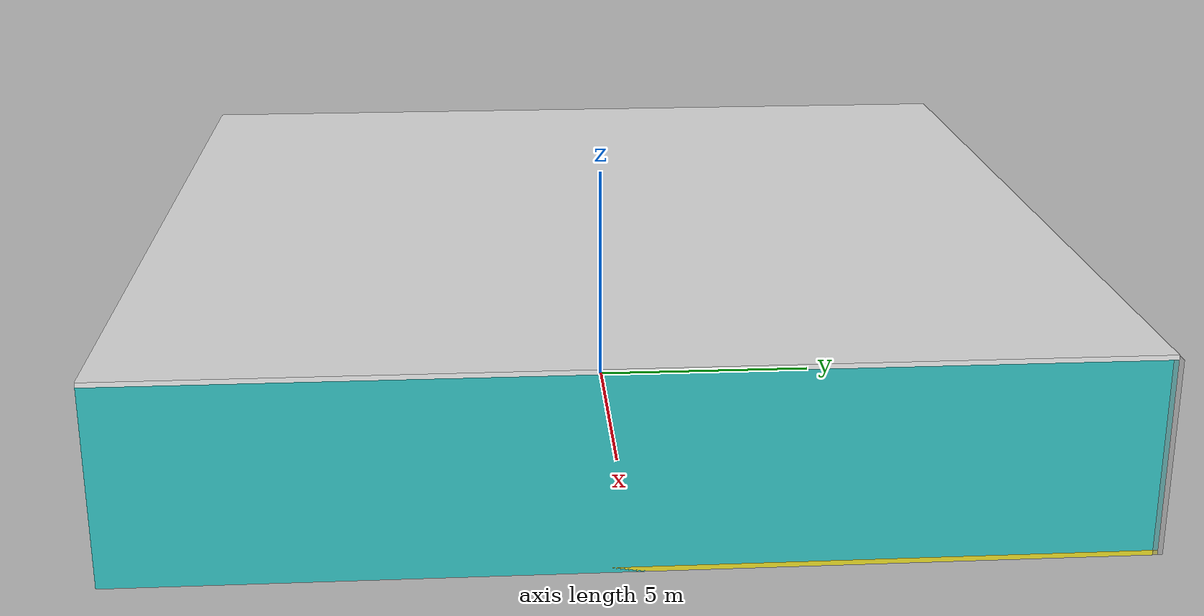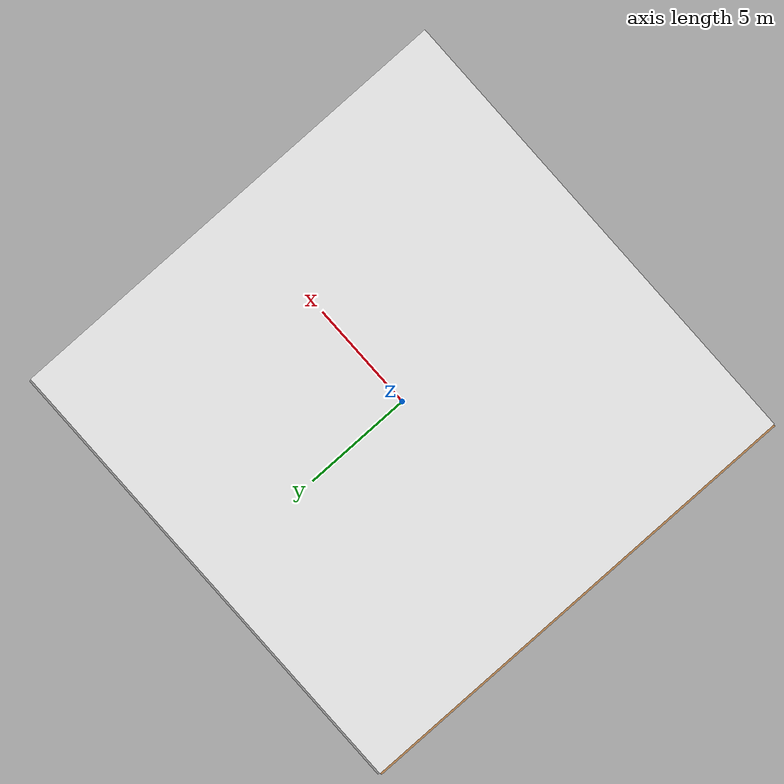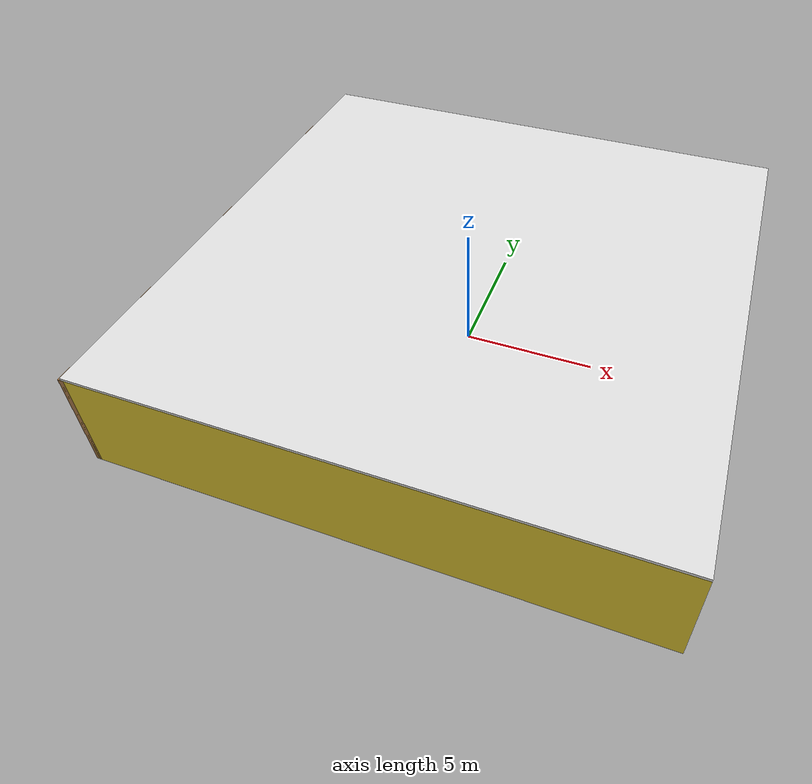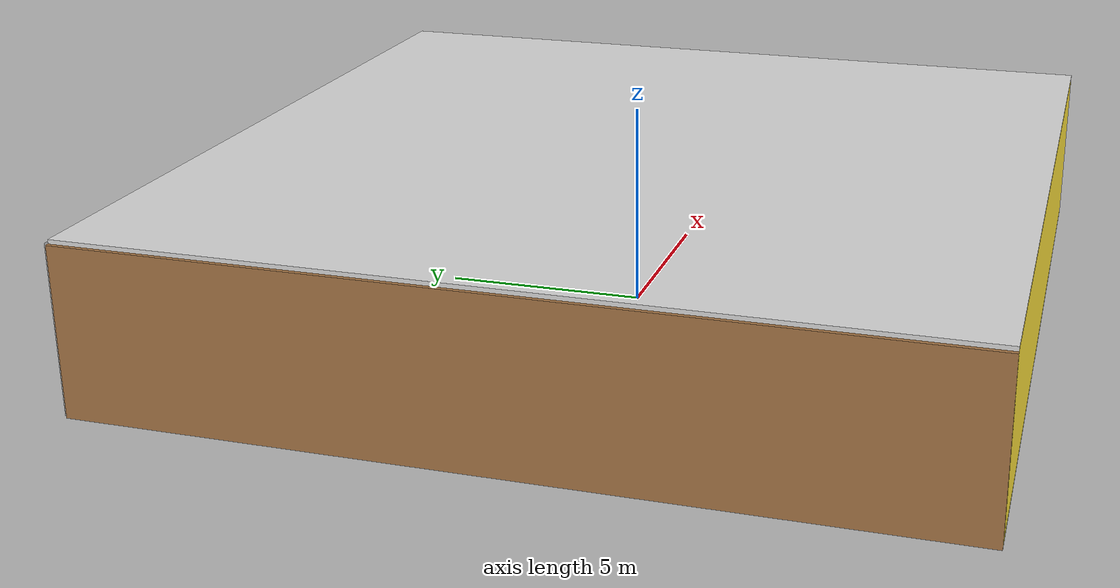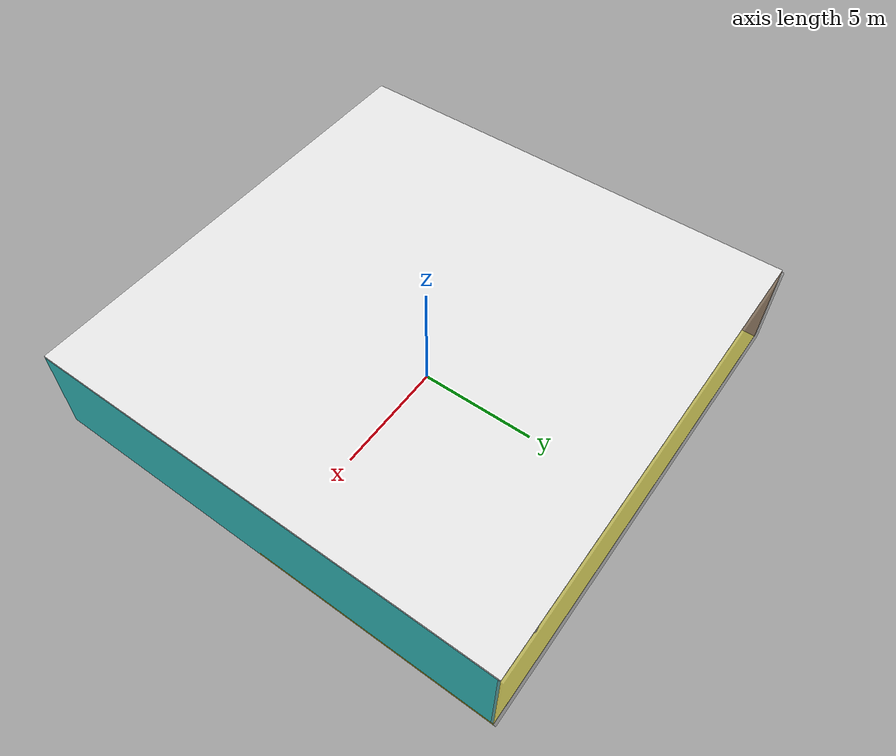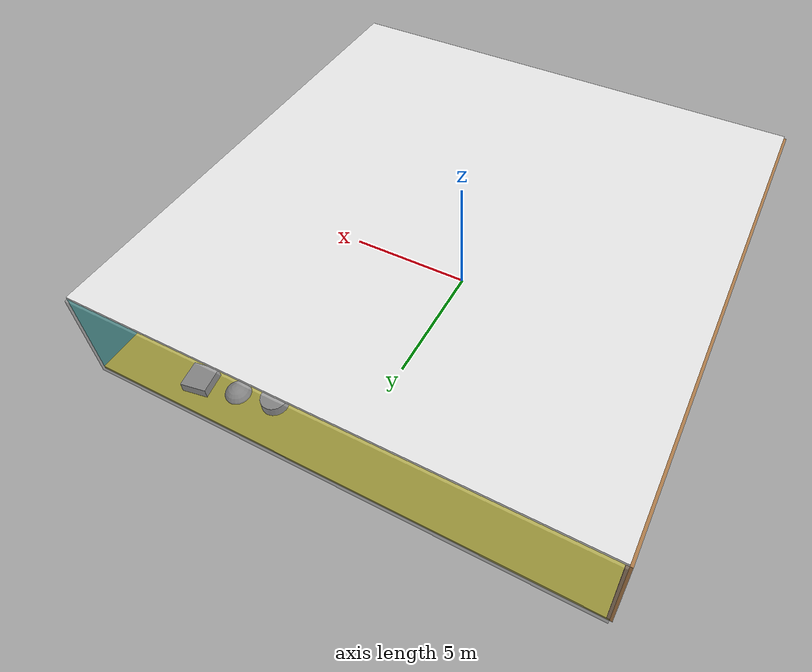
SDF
<sdf version="1.4">
 <world name="default">
  <physics type="ode">
   <max_step_size>0.001</max_step_size>
   <real_time_factor>1</real_time_factor>
   <real_time_update_rate>1000</real_time_update_rate>
   <gravity>0 0 -9.8</gravity>
  </physics>
  <scene><ambient>0.4 0.4 0.4 1</ambient><background>0.7 0.7 0.7 1</background><shadows>1</shadows></scene>
  <model name="Surrounding">
   <static>1</static>
   <link name="Ceiling">
    <collision name="Ceiling_Collision"><geometry><box><size>20 20 0.1</size></box></geometry></collision>
    <visual name="Ceiling_Visual">
     <geometry><box><size>20 20 0.1</size></box></geometry>
     <material>
      <script><uri>file://media/materials/scripts/gazebo.material</uri><name>Gazebo/WhiteGlow</name></script>
     </material>
    </visual>
    <pose>0 0 4.05 0 0 0</pose>
   </link>
   <link name="Wall_South">
    <collision name="Wall_South_Collision">
     <geometry><box><size>20 0 4</size></box></geometry>
     <pose>0 0 2 0 -0 0</pose>
    </collision>
    <visual name="Wall_South_Visual">
     <pose>0 0 2 0 -0 0</pose>
     <geometry><box><size>20 0 4</size></box></geometry>
     <material>
      <script><uri>file://media/materials/scripts/gazebo.material</uri><name>Gazebo/ZincYellow</name></script>
     </material>
    </visual>
    <velocity_decay><linear>0</linear><angular>0</angular></velocity_decay>
    <pose>0 -10 0 0 -0 0</pose>
   </link>
   <link name="Wall_East">
    <collision name="Wall_21_Collision">
     <geometry><box><size>20 0 4</size></box></geometry>
     <pose>0 0 2 0 -0 0</pose>
    </collision>
    <visual name="Wall_21_Visual">
     <pose>0 0 2 0 -0 0</pose>
     <geometry><box><size>20 0 4</size></box></geometry>
     <material>
      <script><uri>file://media/materials/scripts/gazebo.material</uri><name>Gazebo/TurquoiseGlow</name></script>
     </material>
    </visual>
    <velocity_decay><linear>0</linear><angular>0</angular></velocity_decay>
    <pose>10 0 0 0 -0 1.5708</pose>
   </link>
   <link name="Wall_North">
    <collision name="Wall_22_Collision">
     <geometry><box><size>20 0.2 4</size></box></geometry>
     <pose>0 0 2 0 -0 0</pose>
    </collision>
    <visual name="Wall_22_Visual">
     <pose>0 0 2 0 -0 0</pose>
     <geometry><box><size>20 0.2 4</size></box></geometry>
     <material>
      <script><uri>file://media/materials/scripts/gazebo.material</uri><name>Gazebo/GreyTransparent</name></script>
     </material>
    </visual>
    <velocity_decay><linear>0</linear><angular>0</angular></velocity_decay>
    <pose>0 10 0 0 -0 0</pose>
   </link>
   <link name="Wall_West">
    <collision name="Wall_23_Collision">
     <geometry><box><size>20 0.2 4</size></box></geometry>
     <pose>0 0 2 0 -0 0</pose>
    </collision>
    <visual name="Wall_23_Visual">
     <pose>0 0 2 0 -0 0</pose>
     <geometry><box><size>20 0.2 4</size></box></geometry>
     <material>
      <script><uri>file://media/materials/scripts/gazebo.material</uri><name>Gazebo/Wood</name></script>
     </material>
    </visual>
    <velocity_decay><linear>0</linear><angular>0</angular></velocity_decay>
    <pose>-10 0 0 0 0 -1.5708</pose>
   </link>
   <link name="Ground_link">
    <collision name="collision">
     <pose>0 0 .05 0 -0 0</pose>
     <geometry><box><size>20 20 0.1</size></box></geometry>
    </collision>
    <visual name="visual">
     <pose>0 0 .05 0 -0 0</pose>
     <geometry><box><size>20 20 0.1</size></box></geometry>
     <material>
      <script><uri>file://media/materials/scripts/gazebo.material</uri><name>Gazebo/Yellow</name></script>
     </material>
    </visual>
   </link>
   <static>1</static>
  </model>
  <spherical_coordinates>
   <surface_model>EARTH_WGS84</surface_model>
   <latitude_deg>0</latitude_deg>
   <longitude_deg>0</longitude_deg>
   <elevation>0</elevation>
   <heading_deg>0</heading_deg>
  </spherical_coordinates>
  <light name="lightball_0" type="diffuse">
   <diffuse>0.8 0.8 0.8 1</diffuse>
   <specular>0.2 0.2 0.2 1</specular>
   <attenuation>
    <range>100</range>
    <constant>0.7</constant>
    <linear>0.01</linear>
    <quadratic>0.001</quadratic>
   </attenuation>
   <direction>-0.5 0.1 -0.9</direction>
   <pose>-6.88011267349 9.26964842484 1.44160986324 0 0 0</pose>
  </light>
  <light name="lightball_1" type="diffuse">
   <diffuse>0.8 0.8 0.8 1</diffuse>
   <specular>0.2 0.2 0.2 1</specular>
   <attenuation>
    <range>100</range>
    <constant>0.7</constant>
    <linear>0.01</linear>
    <quadratic>0.001</quadratic>
   </attenuation>
   <direction>-0.5 0.1 -0.9</direction>
   <pose>3.76104062657 -2.90377608164 1.81943849714 0 0 0</pose>
  </light>
  <light name="lightball_2" type="diffuse">
   <diffuse>0.8 0.8 0.8 1</diffuse>
   <specular>0.2 0.2 0.2 1</specular>
   <attenuation>
    <range>100</range>
    <constant>0.7</constant>
    <linear>0.01</linear>
    <quadratic>0.001</quadratic>
   </attenuation>
   <direction>-0.5 0.1 -0.9</direction>
   <pose>-6.85099802699 7.18434065443 3.1657806651 0 0 0</pose>
  </light>
  <light name="lightball_3" type="diffuse">
   <diffuse>0.8 0.8 0.8 1</diffuse>
   <specular>0.2 0.2 0.2 1</specular>
   <attenuation>
    <range>100</range>
    <constant>0.7</constant>
    <linear>0.01</linear>
    <quadratic>0.001</quadratic>
   </attenuation>
   <direction>-0.5 0.1 -0.9</direction>
   <pose>7.64833182358 7.72020397174 1.64945074194 0 0 0</pose>
  </light>
  <light name="lightball_4" type="diffuse">
   <diffuse>0.8 0.8 0.8 1</diffuse>
   <specular>0.2 0.2 0.2 1</specular>
   <attenuation>
    <range>100</range>
    <constant>0.7</constant>
    <linear>0.01</linear>
    <quadratic>0.001</quadratic>
   </attenuation>
   <direction>-0.5 0.1 -0.9</direction>
   <pose>-9.28641546427 -0.459310528699 3.03998959939 0 0 0</pose>
  </light>
  <light name="lightball_5" type="diffuse">
   <diffuse>0.8 0.8 0.8 1</diffuse>
   <specular>0.2 0.2 0.2 1</specular>
   <attenuation>
    <range>100</range>
    <constant>0.7</constant>
    <linear>0.01</linear>
    <quadratic>0.001</quadratic>
   </attenuation>
   <direction>-0.5 0.1 -0.9</direction>
   <pose>-8.71809204207 -4.0384325374 2.26607516846 0 0 0</pose>
  </light>
  <light name="lightball_6" type="diffuse">
   <diffuse>0.8 0.8 0.8 1</diffuse>
   <specular>0.2 0.2 0.2 1</specular>
   <attenuation>
    <range>100</range>
    <constant>0.7</constant>
    <linear>0.01</linear>
    <quadratic>0.001</quadratic>
   </attenuation>
   <direction>-0.5 0.1 -0.9</direction>
   <pose>-9.79730370322 1.20406853841 2.06497441894 0 0 0</pose>
  </light>
  <include><uri>model://cabinet</uri><pose>-3.51276954928 3.84908418173 0 0 0 0.62697367212</pose></include>
  <include><uri>model://cabinet</uri><pose>2.28143862892 -8.17832237133 0 0 0 1.59909453858</pose></include>
  <include>
   <uri>model://textured_shapes</uri>
   <pose>4.6125353125 -4.59040336145 0 0 0 2.7140087892</pose>
  </include>
  <include>
   <uri>model://textured_shapes</uri>
   <pose>4.7522624004 8.66772568631 0 0 0 1.73691097813</pose>
  </include>
  <include>
   <uri>model://construction_cone</uri>
   <pose>7.43038313372 4.51017853622 0 0 0 2.22464301414</pose>
  </include>
 </world>
</sdf>

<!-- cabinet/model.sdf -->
<sdf version="1.5">
  <model name="cabinet">
    <static>true</static>
    <link name="cabinet_bottom_plate">
      <inertial>
        <pose>0 0 -1 0 0 0</pose>
        <inertia>
          <ixx>2.050000</ixx>
          <ixy>0</ixy>
          <ixz>0</ixz>
          <iyy>2.050000</iyy>
          <iyz>0</iyz>
          <izz>2.050000</izz>
        </inertia>
        <mass>25.000000</mass>
      </inertial>
      <collision name="cabinet_bottom_plate_geom">
        <pose>0 0 0.010000 0 0 0</pose>
        <geometry>
          <box>
            <size>0.450000 0.450000 0.020000</size>
          </box>
        </geometry>
      </collision>
      <visual name="cabinet_bottom_plate_geom_visual">
        <pose>0 0 0.010000 0 0 0</pose>
        <geometry>
          <box>
            <size>0.450000 0.450000 0.020000</size>
          </box>
        </geometry>
        <material>
          <script>
            <uri>model://media/materials/scripts/gazebo.material</uri>
            <name>Gazebo/Wood</name>
          </script>
        </material>
      </visual>
      <collision name="cabinet_bottom_plate_geom_cabinet_back_plate">
        <pose>0.235000 0 0.510000 0 0 0</pose>
        <geometry>
          <box>
            <size>0.020000 0.450000 1.020000</size>
          </box>
        </geometry>
      </collision>
      <visual name="cabinet_bottom_plate_geom_cabinet_back_plate_visual">
        <pose>0.235000 0 0.510000 0 0 0</pose>
        <geometry>
          <box>
            <size>0.020000 0.450000 1.020000</size>
          </box>
        </geometry>
        <material>
          <script>
            <uri>model://media/materials/scripts/gazebo.material</uri>
            <name>Gazebo/Wood</name>
          </script>
        </material>
      </visual>
      <collision name="cabinet_bottom_plate_geom_cabinet_left_plate">
        <pose>0 0.235000 0.510000 0 0 0</pose>
        <geometry>
          <box>
            <size>0.450000 0.020000 1.020000</size>
          </box>
        </geometry>
      </collision>
      <visual name="cabinet_bottom_plate_geom_cabinet_left_plate_visual">
        <pose>0 0.235000 0.510000 0 0 0</pose>
        <geometry>
          <box>
            <size>0.450000 0.020000 1.020000</size>
          </box>
        </geometry>
        <material>
          <script>
            <uri>model://media/materials/scripts/gazebo.material</uri>
            <name>Gazebo/Wood</name>
          </script>
        </material>
      </visual>
      <collision name="cabinet_bottom_plate_geom_cabinet_middle_plate">
        <pose>0 0 0.510000 0 0 0</pose>
        <geometry>
          <box>
            <size>0.450000 0.450000 0.020000</size>
          </box>
        </geometry>
      </collision>
      <visual name="cabinet_bottom_plate_geom_cabinet_middle_plate_visual">
        <pose>0 0 0.510000 0 0 0</pose>
        <geometry>
          <box>
            <size>0.450000 0.450000 0.020000</size>
          </box>
        </geometry>
        <material>
          <script>
            <uri>model://media/materials/scripts/gazebo.material</uri>
            <name>Gazebo/Wood</name>
          </script>
        </material>
      </visual>
      <collision name="cabinet_bottom_plate_geom_cabinet_right_plate">
        <pose>0 -0.235000 0.510000 0 0 0</pose>
        <geometry>
          <box>
            <size>0.450000 0.020000 1.020000</size>
          </box>
        </geometry>
      </collision>
      <visual name="cabinet_bottom_plate_geom_cabinet_right_plate_visual">
        <pose>0 -0.235000 0.510000 0 0 0</pose>
        <geometry>
          <box>
            <size>0.450000 0.020000 1.020000</size>
          </box>
        </geometry>
        <material>
          <script>
            <uri>model://media/materials/scripts/gazebo.material</uri>
            <name>Gazebo/Wood</name>
          </script>
        </material>
      </visual>
      <collision name="cabinet_bottom_plate_geom_cabinet_top_plate">
        <pose>0 0 1.010000 0 0 0</pose>
        <geometry>
          <box>
            <size>0.450000 0.450000 0.020000</size>
          </box>
        </geometry>
      </collision>
      <visual name="cabinet_bottom_plate_geom_cabinet_top_plate_visual">
        <pose>0 0 1.010000 0 0 0</pose>
        <geometry>
          <box>
            <size>0.450000 0.450000 0.020000</size>
          </box>
        </geometry>
        <material>
          <script>
            <uri>model://media/materials/scripts/gazebo.material</uri>
            <name>Gazebo/Wood</name>
          </script>
        </material>
      </visual>
    </link>
  </model>
</sdf>

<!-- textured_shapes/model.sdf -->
<sdf version="1.6">
  <model name="textured_shapes">
    <pose>0 0 0.5 0 0 0</pose>
    <link name="box">
      <pose>0 -1.5 0 0 0 0</pose>
      <collision name="collision">
        <geometry>
          <box>
            <size>1 1 1</size>
          </box>
        </geometry>
      </collision>
      <visual name="visual">
        <geometry>
          <box>
            <size>1 1 1</size>
          </box>
        </geometry>
        <material>
          <script>
            <uri>model://../model_source/models/textured_shapes/materials/scripts</uri>
            <uri>model://../model_source/models/textured_shapes/materials/textures</uri>
            <name>TexturedShape/Squares</name>
          </script>
        </material>
      </visual>
    </link>
    <link name="sphere">
      <collision name="collision">
        <geometry>
          <sphere>
            <radius>0.5</radius>
          </sphere>
        </geometry>
      </collision>
      <visual name="visual">
        <geometry>
          <sphere>
            <radius>0.5</radius>
          </sphere>
        </geometry>
        <material>
          <script>
            <uri>model://../model_source/models/textured_shapes/materials/scripts</uri>
            <uri>model://../model_source/models/textured_shapes/materials/textures</uri>
            <name>TexturedShape/Squares</name>
          </script>
        </material>
      </visual>
    </link>
    <link name="cylinder">
      <pose>0 1.5 0 0 0 0</pose>
      <collision name="collision">
        <geometry>
          <cylinder>
            <radius>0.5</radius>
            <length>1</length>
          </cylinder>
        </geometry>
      </collision>
      <visual name="visual">
        <geometry>
          <cylinder>
            <radius>0.5</radius>
            <length>1</length>
          </cylinder>
        </geometry>
        <material>
          <script>
            <uri>model://../model_source/models/textured_shapes/materials/scripts</uri>
            <uri>model://../model_source/models/textured_shapes/materials/textures</uri>
            <name>TexturedShape/Squares</name>
          </script>
        </material>
      </visual>
    </link>
  </model>
</sdf>

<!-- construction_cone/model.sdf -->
<sdf version="1.5">
  <model name="Construction Cone">
    <link name="link">
      <collision name="collision">
        <geometry>
          <mesh>
            <scale>10 10 10</scale>
            <uri>file://isr-testbed/construction_cone/meshes/construction_cone.dae</uri>
          </mesh>
        </geometry>
      </collision>
      <visual name="visual">
        <geometry>
          <mesh>
            <scale>10 10 10</scale>
            <uri>file://isr-testbed/construction_cone/meshes/construction_cone.dae</uri>
          </mesh>
        </geometry>
      </visual>
    </link>
  </model>
</sdf>
